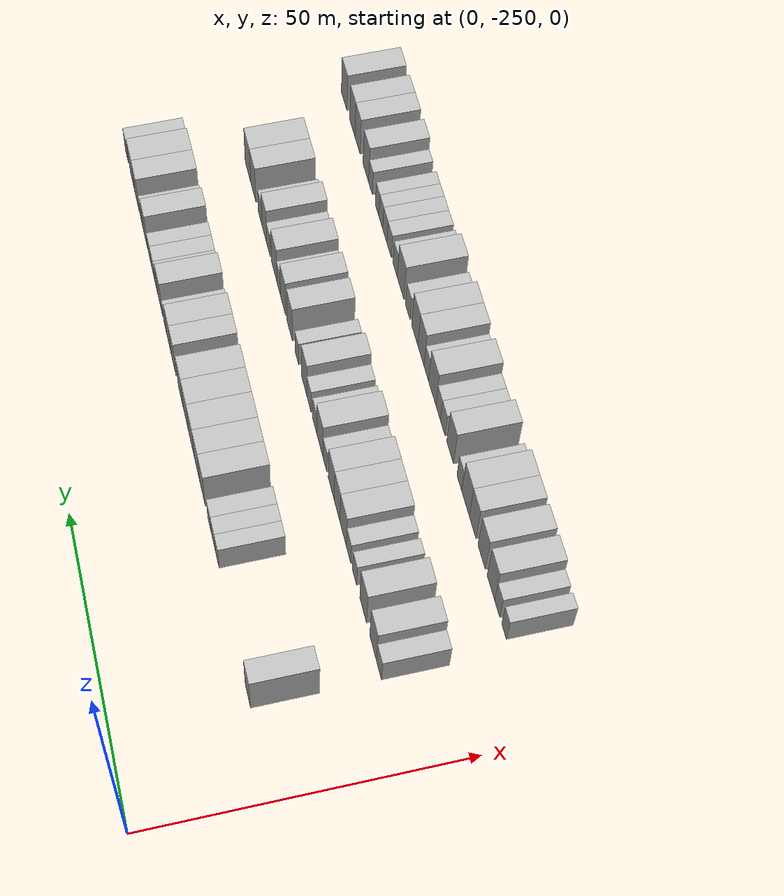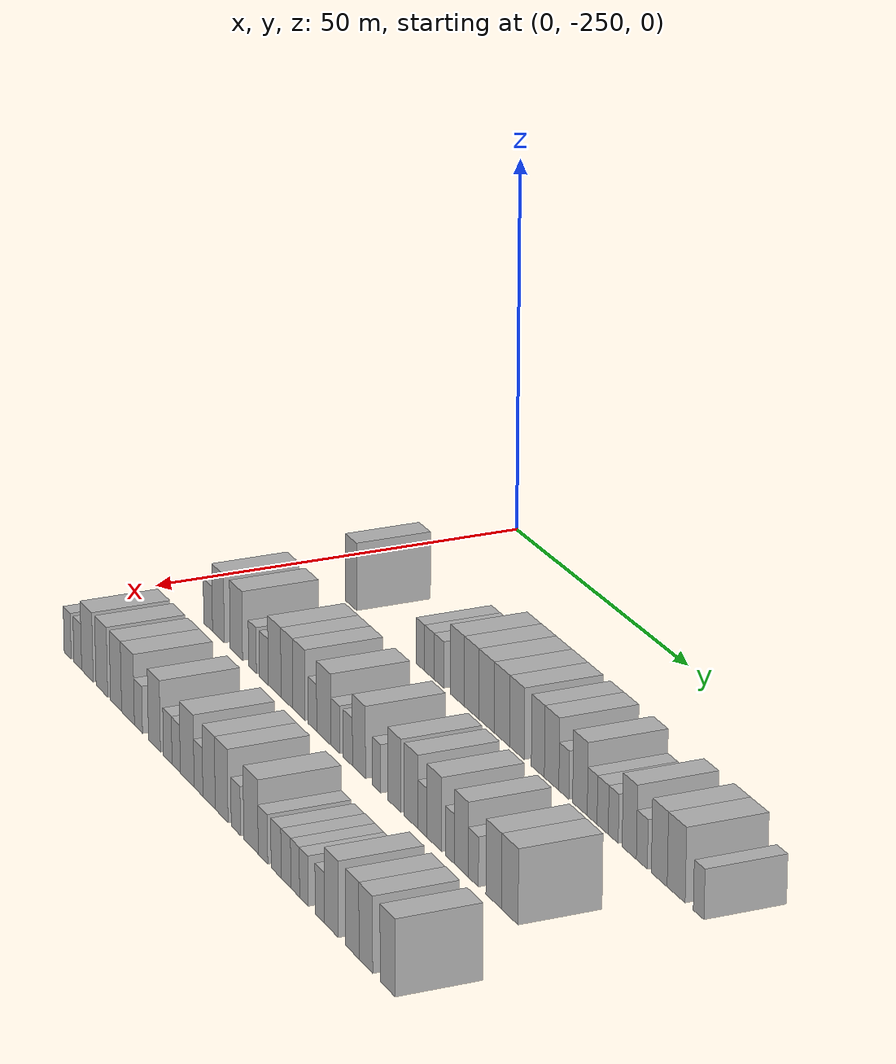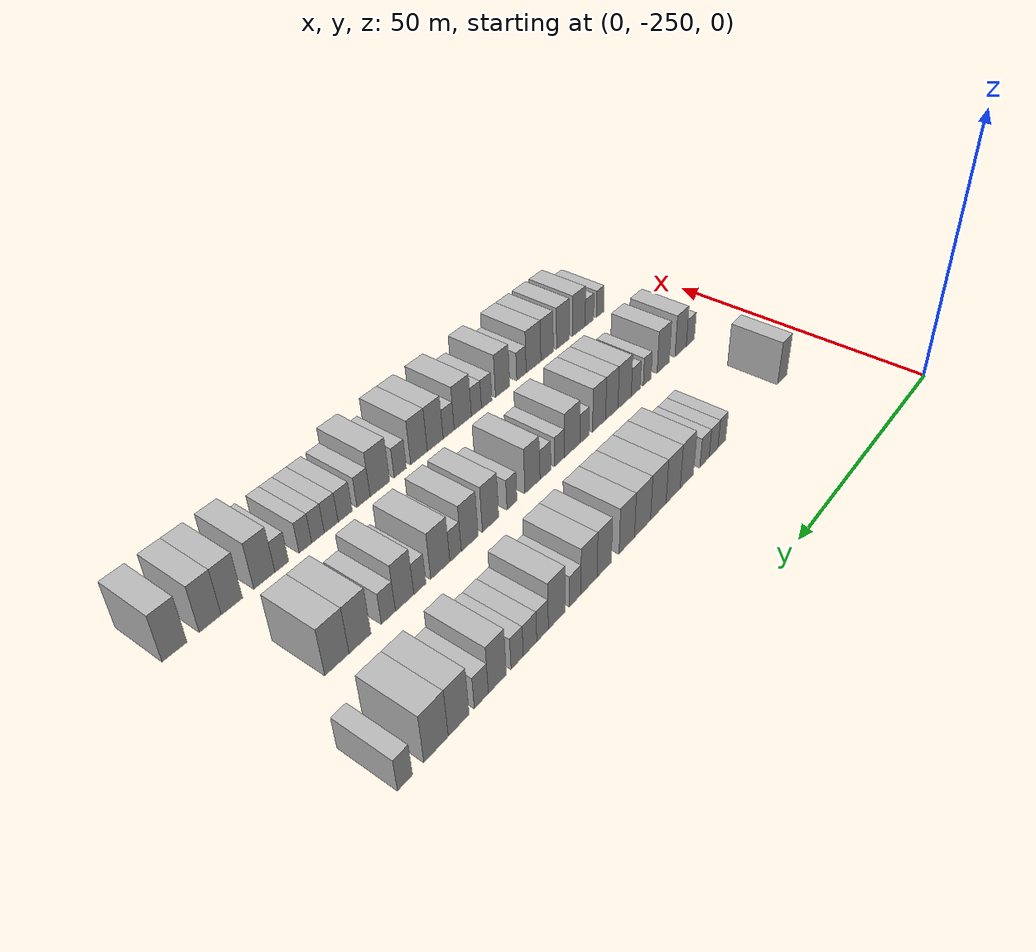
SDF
<sdf version="1.6">
 <world name="default">
  <model name="building_1">
   <static>1</static>
   <pose>25.0000 -234.1996 0 0.000000 0.000000 0.000000</pose>
   <link name="link">
    <pose>0 0 4.50 0 0 0</pose>
    <collision name="collision"><geometry><box><size>10.0000 3.6008 9.0000</size></box></geometry></collision>
    <visual name="visual">
     <cast_shadows>0</cast_shadows>
     <geometry><box><size>10.0000 3.6008 9.0000</size></box></geometry>
     <material>
      <script>
       <uri>model://HANNAS_wall/materials/scripts</uri>
       <uri>model://HANNAS_wall/materials/textures</uri>
       <name>vrc/HANNAS_wall</name>
      </script>
     </material>
    </visual>
   </link>
  </model>
  <model name="building_2">
   <static>1</static>
   <pose>25.0000 -212.4626 0 0.000000 0.000000 0.000000</pose>
   <link name="link">
    <pose>0 0 3.00 0 0 0</pose>
    <collision name="collision"><geometry><box><size>10.0000 2.6244 6.0000</size></box></geometry></collision>
    <visual name="visual">
     <cast_shadows>0</cast_shadows>
     <geometry><box><size>10.0000 2.6244 6.0000</size></box></geometry>
     <material>
      <script>
       <uri>model://HANNAS_wall/materials/scripts</uri>
       <uri>model://HANNAS_wall/materials/textures</uri>
       <name>vrc/HANNAS_wall</name>
      </script>
     </material>
    </visual>
   </link>
  </model>
  <model name="building_3">
   <static>1</static>
   <pose>25.0000 -209.7296 0 0.000000 0.000000 0.000000</pose>
   <link name="link">
    <pose>0 0 3.00 0 0 0</pose>
    <collision name="collision"><geometry><box><size>10.0000 2.8417 6.0000</size></box></geometry></collision>
    <visual name="visual">
     <cast_shadows>0</cast_shadows>
     <geometry><box><size>10.0000 2.8417 6.0000</size></box></geometry>
     <material>
      <script>
       <uri>model://HANNAS_wall/materials/scripts</uri>
       <uri>model://HANNAS_wall/materials/textures</uri>
       <name>vrc/HANNAS_wall</name>
      </script>
     </material>
    </visual>
   </link>
  </model>
  <model name="building_4">
   <static>1</static>
   <pose>25.0000 -206.8350 0 0.000000 0.000000 0.000000</pose>
   <link name="link">
    <pose>0 0 3.00 0 0 0</pose>
    <collision name="collision"><geometry><box><size>10.0000 2.9476 6.0000</size></box></geometry></collision>
    <visual name="visual">
     <cast_shadows>0</cast_shadows>
     <geometry><box><size>10.0000 2.9476 6.0000</size></box></geometry>
     <material>
      <script>
       <uri>model://HANNAS_wall/materials/scripts</uri>
       <uri>model://HANNAS_wall/materials/textures</uri>
       <name>vrc/HANNAS_wall</name>
      </script>
     </material>
    </visual>
   </link>
  </model>
  <model name="building_5">
   <static>1</static>
   <pose>25.0000 -201.3262 0 0.000000 0.000000 0.000000</pose>
   <link name="link">
    <pose>0 0 4.50 0 0 0</pose>
    <collision name="collision"><geometry><box><size>10.0000 4.0698 9.0000</size></box></geometry></collision>
    <visual name="visual">
     <cast_shadows>0</cast_shadows>
     <geometry><box><size>10.0000 4.0698 9.0000</size></box></geometry>
     <material>
      <script>
       <uri>model://HANNAS_wall/materials/scripts</uri>
       <uri>model://HANNAS_wall/materials/textures</uri>
       <name>vrc/HANNAS_wall</name>
      </script>
     </material>
    </visual>
   </link>
  </model>
  <model name="building_6">
   <static>1</static>
   <pose>25.0000 -197.2002 0 0.000000 0.000000 0.000000</pose>
   <link name="link">
    <pose>0 0 4.50 0 0 0</pose>
    <collision name="collision"><geometry><box><size>10.0000 4.1822 9.0000</size></box></geometry></collision>
    <visual name="visual">
     <cast_shadows>0</cast_shadows>
     <geometry><box><size>10.0000 4.1822 9.0000</size></box></geometry>
     <material>
      <script>
       <uri>model://HANNAS_wall/materials/scripts</uri>
       <uri>model://HANNAS_wall/materials/textures</uri>
       <name>vrc/HANNAS_wall</name>
      </script>
     </material>
    </visual>
   </link>
  </model>
  <model name="building_7">
   <static>1</static>
   <pose>25.0000 -192.8807 0 0.000000 0.000000 0.000000</pose>
   <link name="link">
    <pose>0 0 4.50 0 0 0</pose>
    <collision name="collision"><geometry><box><size>10.0000 4.4569 9.0000</size></box></geometry></collision>
    <visual name="visual">
     <cast_shadows>0</cast_shadows>
     <geometry><box><size>10.0000 4.4569 9.0000</size></box></geometry>
     <material>
      <script>
       <uri>model://HANNAS_wall/materials/scripts</uri>
       <uri>model://HANNAS_wall/materials/textures</uri>
       <name>vrc/HANNAS_wall</name>
      </script>
     </material>
    </visual>
   </link>
  </model>
  <model name="building_8">
   <static>1</static>
   <pose>25.0000 -188.4448 0 0.000000 0.000000 0.000000</pose>
   <link name="link">
    <pose>0 0 4.50 0 0 0</pose>
    <collision name="collision"><geometry><box><size>10.0000 4.4149 9.0000</size></box></geometry></collision>
    <visual name="visual">
     <cast_shadows>0</cast_shadows>
     <geometry><box><size>10.0000 4.4149 9.0000</size></box></geometry>
     <material>
      <script>
       <uri>model://HANNAS_wall/materials/scripts</uri>
       <uri>model://HANNAS_wall/materials/textures</uri>
       <name>vrc/HANNAS_wall</name>
      </script>
     </material>
    </visual>
   </link>
  </model>
  <model name="building_9">
   <static>1</static>
   <pose>25.0000 -184.1795 0 0.000000 0.000000 0.000000</pose>
   <link name="link">
    <pose>0 0 4.50 0 0 0</pose>
    <collision name="collision"><geometry><box><size>10.0000 4.1157 9.0000</size></box></geometry></collision>
    <visual name="visual">
     <cast_shadows>0</cast_shadows>
     <geometry><box><size>10.0000 4.1157 9.0000</size></box></geometry>
     <material>
      <script>
       <uri>model://HANNAS_wall/materials/scripts</uri>
       <uri>model://HANNAS_wall/materials/textures</uri>
       <name>vrc/HANNAS_wall</name>
      </script>
     </material>
    </visual>
   </link>
  </model>
  <model name="building_10">
   <static>1</static>
   <pose>25.0000 -178.3188 0 0.000000 0.000000 0.000000</pose>
   <link name="link">
    <pose>0 0 4.50 0 0 0</pose>
    <collision name="collision"><geometry><box><size>10.0000 3.6058 9.0000</size></box></geometry></collision>
    <visual name="visual">
     <cast_shadows>0</cast_shadows>
     <geometry><box><size>10.0000 3.6058 9.0000</size></box></geometry>
     <material>
      <script>
       <uri>model://HANNAS_wall/materials/scripts</uri>
       <uri>model://HANNAS_wall/materials/textures</uri>
       <name>vrc/HANNAS_wall</name>
      </script>
     </material>
    </visual>
   </link>
  </model>
  <model name="building_11">
   <static>1</static>
   <pose>25.0000 -174.5327 0 0.000000 0.000000 0.000000</pose>
   <link name="link">
    <pose>0 0 4.50 0 0 0</pose>
    <collision name="collision"><geometry><box><size>10.0000 3.9665 9.0000</size></box></geometry></collision>
    <visual name="visual">
     <cast_shadows>0</cast_shadows>
     <geometry><box><size>10.0000 3.9665 9.0000</size></box></geometry>
     <material>
      <script>
       <uri>model://HANNAS_wall/materials/scripts</uri>
       <uri>model://HANNAS_wall/materials/textures</uri>
       <name>vrc/HANNAS_wall</name>
      </script>
     </material>
    </visual>
   </link>
  </model>
  <model name="building_12">
   <static>1</static>
   <pose>25.0000 -171.1849 0 0.000000 0.000000 0.000000</pose>
   <link name="link">
    <pose>0 0 3.00 0 0 0</pose>
    <collision name="collision"><geometry><box><size>10.0000 2.7291 6.0000</size></box></geometry></collision>
    <visual name="visual">
     <cast_shadows>0</cast_shadows>
     <geometry><box><size>10.0000 2.7291 6.0000</size></box></geometry>
     <material>
      <script>
       <uri>model://HANNAS_wall/materials/scripts</uri>
       <uri>model://HANNAS_wall/materials/textures</uri>
       <name>vrc/HANNAS_wall</name>
      </script>
     </material>
    </visual>
   </link>
  </model>
  <model name="building_13">
   <static>1</static>
   <pose>25.0000 -166.8617 0 0.000000 0.000000 0.000000</pose>
   <link name="link">
    <pose>0 0 4.50 0 0 0</pose>
    <collision name="collision"><geometry><box><size>10.0000 3.9173 9.0000</size></box></geometry></collision>
    <visual name="visual">
     <cast_shadows>0</cast_shadows>
     <geometry><box><size>10.0000 3.9173 9.0000</size></box></geometry>
     <material>
      <script>
       <uri>model://HANNAS_wall/materials/scripts</uri>
       <uri>model://HANNAS_wall/materials/textures</uri>
       <name>vrc/HANNAS_wall</name>
      </script>
     </material>
    </visual>
   </link>
  </model>
  <model name="building_14">
   <static>1</static>
   <pose>25.0000 -163.6050 0 0.000000 0.000000 0.000000</pose>
   <link name="link">
    <pose>0 0 3.00 0 0 0</pose>
    <collision name="collision"><geometry><box><size>10.0000 2.5963 6.0000</size></box></geometry></collision>
    <visual name="visual">
     <cast_shadows>0</cast_shadows>
     <geometry><box><size>10.0000 2.5963 6.0000</size></box></geometry>
     <material>
      <script>
       <uri>model://HANNAS_wall/materials/scripts</uri>
       <uri>model://HANNAS_wall/materials/textures</uri>
       <name>vrc/HANNAS_wall</name>
      </script>
     </material>
    </visual>
   </link>
  </model>
  <model name="building_15">
   <static>1</static>
   <pose>25.0000 -160.8291 0 0.000000 0.000000 0.000000</pose>
   <link name="link">
    <pose>0 0 3.00 0 0 0</pose>
    <collision name="collision"><geometry><box><size>10.0000 2.9556 6.0000</size></box></geometry></collision>
    <visual name="visual">
     <cast_shadows>0</cast_shadows>
     <geometry><box><size>10.0000 2.9556 6.0000</size></box></geometry>
     <material>
      <script>
       <uri>model://HANNAS_wall/materials/scripts</uri>
       <uri>model://HANNAS_wall/materials/textures</uri>
       <name>vrc/HANNAS_wall</name>
      </script>
     </material>
    </visual>
   </link>
  </model>
  <model name="building_16">
   <static>1</static>
   <pose>25.0000 -158.0564 0 0.000000 0.000000 0.000000</pose>
   <link name="link">
    <pose>0 0 3.00 0 0 0</pose>
    <collision name="collision"><geometry><box><size>10.0000 2.5897 6.0000</size></box></geometry></collision>
    <visual name="visual">
     <cast_shadows>0</cast_shadows>
     <geometry><box><size>10.0000 2.5897 6.0000</size></box></geometry>
     <material>
      <script>
       <uri>model://HANNAS_wall/materials/scripts</uri>
       <uri>model://HANNAS_wall/materials/textures</uri>
       <name>vrc/HANNAS_wall</name>
      </script>
     </material>
    </visual>
   </link>
  </model>
  <model name="building_17">
   <static>1</static>
   <pose>25.0000 -153.9333 0 0.000000 0.000000 0.000000</pose>
   <link name="link">
    <pose>0 0 4.50 0 0 0</pose>
    <collision name="collision"><geometry><box><size>10.0000 3.6567 9.0000</size></box></geometry></collision>
    <visual name="visual">
     <cast_shadows>0</cast_shadows>
     <geometry><box><size>10.0000 3.6567 9.0000</size></box></geometry>
     <material>
      <script>
       <uri>model://HANNAS_wall/materials/scripts</uri>
       <uri>model://HANNAS_wall/materials/textures</uri>
       <name>vrc/HANNAS_wall</name>
      </script>
     </material>
    </visual>
   </link>
  </model>
  <model name="building_18">
   <static>1</static>
   <pose>25.0000 -150.7029 0 0.000000 0.000000 0.000000</pose>
   <link name="link">
    <pose>0 0 3.00 0 0 0</pose>
    <collision name="collision"><geometry><box><size>10.0000 2.8040 6.0000</size></box></geometry></collision>
    <visual name="visual">
     <cast_shadows>0</cast_shadows>
     <geometry><box><size>10.0000 2.8040 6.0000</size></box></geometry>
     <material>
      <script>
       <uri>model://HANNAS_wall/materials/scripts</uri>
       <uri>model://HANNAS_wall/materials/textures</uri>
       <name>vrc/HANNAS_wall</name>
      </script>
     </material>
    </visual>
   </link>
  </model>
  <model name="building_19">
   <static>1</static>
   <pose>25.0000 -146.3137 0 0.000000 0.000000 0.000000</pose>
   <link name="link">
    <pose>0 0 4.50 0 0 0</pose>
    <collision name="collision"><geometry><box><size>10.0000 3.9744 9.0000</size></box></geometry></collision>
    <visual name="visual">
     <cast_shadows>0</cast_shadows>
     <geometry><box><size>10.0000 3.9744 9.0000</size></box></geometry>
     <material>
      <script>
       <uri>model://HANNAS_wall/materials/scripts</uri>
       <uri>model://HANNAS_wall/materials/textures</uri>
       <name>vrc/HANNAS_wall</name>
      </script>
     </material>
    </visual>
   </link>
  </model>
  <model name="building_20">
   <static>1</static>
   <pose>25.0000 -142.0945 0 0.000000 0.000000 0.000000</pose>
   <link name="link">
    <pose>0 0 4.50 0 0 0</pose>
    <collision name="collision"><geometry><box><size>10.0000 4.4641 9.0000</size></box></geometry></collision>
    <visual name="visual">
     <cast_shadows>0</cast_shadows>
     <geometry><box><size>10.0000 4.4641 9.0000</size></box></geometry>
     <material>
      <script>
       <uri>model://HANNAS_wall/materials/scripts</uri>
       <uri>model://HANNAS_wall/materials/textures</uri>
       <name>vrc/HANNAS_wall</name>
      </script>
     </material>
    </visual>
   </link>
  </model>
  <model name="building_21">
   <static>1</static>
   <pose>25.0000 -136.5573 0 0.000000 0.000000 0.000000</pose>
   <link name="link">
    <pose>0 0 3.00 0 0 0</pose>
    <collision name="collision"><geometry><box><size>10.0000 2.6102 6.0000</size></box></geometry></collision>
    <visual name="visual">
     <cast_shadows>0</cast_shadows>
     <geometry><box><size>10.0000 2.6102 6.0000</size></box></geometry>
     <material>
      <script>
       <uri>model://HANNAS_wall/materials/scripts</uri>
       <uri>model://HANNAS_wall/materials/textures</uri>
       <name>vrc/HANNAS_wall</name>
      </script>
     </material>
    </visual>
   </link>
  </model>
  <model name="building_119">
   <static>1</static>
   <pose>44.0000 -234.5075 0 0.000000 0.000000 0.000000</pose>
   <link name="link">
    <pose>0 0 3.00 0 0 0</pose>
    <collision name="collision"><geometry><box><size>10.0000 2.9849 6.0000</size></box></geometry></collision>
    <visual name="visual">
     <cast_shadows>0</cast_shadows>
     <geometry><box><size>10.0000 2.9849 6.0000</size></box></geometry>
     <material>
      <script>
       <uri>model://HANNAS_wall/materials/scripts</uri>
       <uri>model://HANNAS_wall/materials/textures</uri>
       <name>vrc/HANNAS_wall</name>
      </script>
     </material>
    </visual>
   </link>
  </model>
  <model name="building_120">
   <static>1</static>
   <pose>44.0000 -231.0222 0 0.000000 0.000000 0.000000</pose>
   <link name="link">
    <pose>0 0 4.50 0 0 0</pose>
    <collision name="collision"><geometry><box><size>10.0000 3.9858 9.0000</size></box></geometry></collision>
    <visual name="visual">
     <cast_shadows>0</cast_shadows>
     <geometry><box><size>10.0000 3.9858 9.0000</size></box></geometry>
     <material>
      <script>
       <uri>model://HANNAS_wall/materials/scripts</uri>
       <uri>model://HANNAS_wall/materials/textures</uri>
       <name>vrc/HANNAS_wall</name>
      </script>
     </material>
    </visual>
   </link>
  </model>
  <model name="building_121">
   <static>1</static>
   <pose>44.0000 -224.9739 0 0.000000 0.000000 0.000000</pose>
   <link name="link">
    <pose>0 0 4.50 0 0 0</pose>
    <collision name="collision"><geometry><box><size>10.0000 4.1107 9.0000</size></box></geometry></collision>
    <visual name="visual">
     <cast_shadows>0</cast_shadows>
     <geometry><box><size>10.0000 4.1107 9.0000</size></box></geometry>
     <material>
      <script>
       <uri>model://HANNAS_wall/materials/scripts</uri>
       <uri>model://HANNAS_wall/materials/textures</uri>
       <name>vrc/HANNAS_wall</name>
      </script>
     </material>
    </visual>
   </link>
  </model>
  <model name="building_122">
   <static>1</static>
   <pose>44.0000 -219.6382 0 0.000000 0.000000 0.000000</pose>
   <link name="link">
    <pose>0 0 3.00 0 0 0</pose>
    <collision name="collision"><geometry><box><size>10.0000 2.5608 6.0000</size></box></geometry></collision>
    <visual name="visual">
     <cast_shadows>0</cast_shadows>
     <geometry><box><size>10.0000 2.5608 6.0000</size></box></geometry>
     <material>
      <script>
       <uri>model://HANNAS_wall/materials/scripts</uri>
       <uri>model://HANNAS_wall/materials/textures</uri>
       <name>vrc/HANNAS_wall</name>
      </script>
     </material>
    </visual>
   </link>
  </model>
  <model name="building_123">
   <static>1</static>
   <pose>44.0000 -215.9315 0 0.000000 0.000000 0.000000</pose>
   <link name="link">
    <pose>0 0 3.00 0 0 0</pose>
    <collision name="collision"><geometry><box><size>10.0000 2.8527 6.0000</size></box></geometry></collision>
    <visual name="visual">
     <cast_shadows>0</cast_shadows>
     <geometry><box><size>10.0000 2.8527 6.0000</size></box></geometry>
     <material>
      <script>
       <uri>model://HANNAS_wall/materials/scripts</uri>
       <uri>model://HANNAS_wall/materials/textures</uri>
       <name>vrc/HANNAS_wall</name>
      </script>
     </material>
    </visual>
   </link>
  </model>
  <model name="building_124">
   <static>1</static>
   <pose>44.0000 -212.4342 0 0.000000 0.000000 0.000000</pose>
   <link name="link">
    <pose>0 0 4.50 0 0 0</pose>
    <collision name="collision"><geometry><box><size>10.0000 4.1420 9.0000</size></box></geometry></collision>
    <visual name="visual">
     <cast_shadows>0</cast_shadows>
     <geometry><box><size>10.0000 4.1420 9.0000</size></box></geometry>
     <material>
      <script>
       <uri>model://HANNAS_wall/materials/scripts</uri>
       <uri>model://HANNAS_wall/materials/textures</uri>
       <name>vrc/HANNAS_wall</name>
      </script>
     </material>
    </visual>
   </link>
  </model>
  <model name="building_125">
   <static>1</static>
   <pose>44.0000 -208.4997 0 0.000000 0.000000 0.000000</pose>
   <link name="link">
    <pose>0 0 4.50 0 0 0</pose>
    <collision name="collision"><geometry><box><size>10.0000 3.7270 9.0000</size></box></geometry></collision>
    <visual name="visual">
     <cast_shadows>0</cast_shadows>
     <geometry><box><size>10.0000 3.7270 9.0000</size></box></geometry>
     <material>
      <script>
       <uri>model://HANNAS_wall/materials/scripts</uri>
       <uri>model://HANNAS_wall/materials/textures</uri>
       <name>vrc/HANNAS_wall</name>
      </script>
     </material>
    </visual>
   </link>
  </model>
  <model name="building_126">
   <static>1</static>
   <pose>44.0000 -204.7067 0 0.000000 0.000000 0.000000</pose>
   <link name="link">
    <pose>0 0 4.50 0 0 0</pose>
    <collision name="collision"><geometry><box><size>10.0000 3.8591 9.0000</size></box></geometry></collision>
    <visual name="visual">
     <cast_shadows>0</cast_shadows>
     <geometry><box><size>10.0000 3.8591 9.0000</size></box></geometry>
     <material>
      <script>
       <uri>model://HANNAS_wall/materials/scripts</uri>
       <uri>model://HANNAS_wall/materials/textures</uri>
       <name>vrc/HANNAS_wall</name>
      </script>
     </material>
    </visual>
   </link>
  </model>
  <model name="building_127">
   <static>1</static>
   <pose>44.0000 -200.4632 0 0.000000 0.000000 0.000000</pose>
   <link name="link">
    <pose>0 0 3.00 0 0 0</pose>
    <collision name="collision"><geometry><box><size>10.0000 2.6279 6.0000</size></box></geometry></collision>
    <visual name="visual">
     <cast_shadows>0</cast_shadows>
     <geometry><box><size>10.0000 2.6279 6.0000</size></box></geometry>
     <material>
      <script>
       <uri>model://HANNAS_wall/materials/scripts</uri>
       <uri>model://HANNAS_wall/materials/textures</uri>
       <name>vrc/HANNAS_wall</name>
      </script>
     </material>
    </visual>
   </link>
  </model>
  <model name="building_128">
   <static>1</static>
   <pose>44.0000 -196.9866 0 0.000000 0.000000 0.000000</pose>
   <link name="link">
    <pose>0 0 4.50 0 0 0</pose>
    <collision name="collision"><geometry><box><size>10.0000 4.3251 9.0000</size></box></geometry></collision>
    <visual name="visual">
     <cast_shadows>0</cast_shadows>
     <geometry><box><size>10.0000 4.3251 9.0000</size></box></geometry>
     <material>
      <script>
       <uri>model://HANNAS_wall/materials/scripts</uri>
       <uri>model://HANNAS_wall/materials/textures</uri>
       <name>vrc/HANNAS_wall</name>
      </script>
     </material>
    </visual>
   </link>
  </model>
  <model name="building_129">
   <static>1</static>
   <pose>44.0000 -193.4816 0 0.000000 0.000000 0.000000</pose>
   <link name="link">
    <pose>0 0 3.00 0 0 0</pose>
    <collision name="collision"><geometry><box><size>10.0000 2.6850 6.0000</size></box></geometry></collision>
    <visual name="visual">
     <cast_shadows>0</cast_shadows>
     <geometry><box><size>10.0000 2.6850 6.0000</size></box></geometry>
     <material>
      <script>
       <uri>model://HANNAS_wall/materials/scripts</uri>
       <uri>model://HANNAS_wall/materials/textures</uri>
       <name>vrc/HANNAS_wall</name>
      </script>
     </material>
    </visual>
   </link>
  </model>
  <model name="building_130">
   <static>1</static>
   <pose>44.0000 -189.6998 0 0.000000 0.000000 0.000000</pose>
   <link name="link">
    <pose>0 0 3.00 0 0 0</pose>
    <collision name="collision"><geometry><box><size>10.0000 2.8786 6.0000</size></box></geometry></collision>
    <visual name="visual">
     <cast_shadows>0</cast_shadows>
     <geometry><box><size>10.0000 2.8786 6.0000</size></box></geometry>
     <material>
      <script>
       <uri>model://HANNAS_wall/materials/scripts</uri>
       <uri>model://HANNAS_wall/materials/textures</uri>
       <name>vrc/HANNAS_wall</name>
      </script>
     </material>
    </visual>
   </link>
  </model>
  <model name="building_131">
   <static>1</static>
   <pose>44.0000 -186.3219 0 0.000000 0.000000 0.000000</pose>
   <link name="link">
    <pose>0 0 4.50 0 0 0</pose>
    <collision name="collision"><geometry><box><size>10.0000 3.8773 9.0000</size></box></geometry></collision>
    <visual name="visual">
     <cast_shadows>0</cast_shadows>
     <geometry><box><size>10.0000 3.8773 9.0000</size></box></geometry>
     <material>
      <script>
       <uri>model://HANNAS_wall/materials/scripts</uri>
       <uri>model://HANNAS_wall/materials/textures</uri>
       <name>vrc/HANNAS_wall</name>
      </script>
     </material>
    </visual>
   </link>
  </model>
  <model name="building_132">
   <static>1</static>
   <pose>44.0000 -181.1494 0 0.000000 0.000000 0.000000</pose>
   <link name="link">
    <pose>0 0 3.00 0 0 0</pose>
    <collision name="collision"><geometry><box><size>10.0000 2.4678 6.0000</size></box></geometry></collision>
    <visual name="visual">
     <cast_shadows>0</cast_shadows>
     <geometry><box><size>10.0000 2.4678 6.0000</size></box></geometry>
     <material>
      <script>
       <uri>model://HANNAS_wall/materials/scripts</uri>
       <uri>model://HANNAS_wall/materials/textures</uri>
       <name>vrc/HANNAS_wall</name>
      </script>
     </material>
    </visual>
   </link>
  </model>
  <model name="building_133">
   <static>1</static>
   <pose>44.0000 -175.9787 0 0.000000 0.000000 0.000000</pose>
   <link name="link">
    <pose>0 0 4.50 0 0 0</pose>
    <collision name="collision"><geometry><box><size>10.0000 3.8735 9.0000</size></box></geometry></collision>
    <visual name="visual">
     <cast_shadows>0</cast_shadows>
     <geometry><box><size>10.0000 3.8735 9.0000</size></box></geometry>
     <material>
      <script>
       <uri>model://HANNAS_wall/materials/scripts</uri>
       <uri>model://HANNAS_wall/materials/textures</uri>
       <name>vrc/HANNAS_wall</name>
      </script>
     </material>
    </visual>
   </link>
  </model>
  <model name="building_134">
   <static>1</static>
   <pose>44.0000 -171.1171 0 0.000000 0.000000 0.000000</pose>
   <link name="link">
    <pose>0 0 4.50 0 0 0</pose>
    <collision name="collision"><geometry><box><size>10.0000 3.8497 9.0000</size></box></geometry></collision>
    <visual name="visual">
     <cast_shadows>0</cast_shadows>
     <geometry><box><size>10.0000 3.8497 9.0000</size></box></geometry>
     <material>
      <script>
       <uri>model://HANNAS_wall/materials/scripts</uri>
       <uri>model://HANNAS_wall/materials/textures</uri>
       <name>vrc/HANNAS_wall</name>
      </script>
     </material>
    </visual>
   </link>
  </model>
  <model name="building_135">
   <static>1</static>
   <pose>44.0000 -167.9198 0 0.000000 0.000000 0.000000</pose>
   <link name="link">
    <pose>0 0 3.00 0 0 0</pose>
    <collision name="collision"><geometry><box><size>10.0000 2.5449 6.0000</size></box></geometry></collision>
    <visual name="visual">
     <cast_shadows>0</cast_shadows>
     <geometry><box><size>10.0000 2.5449 6.0000</size></box></geometry>
     <material>
      <script>
       <uri>model://HANNAS_wall/materials/scripts</uri>
       <uri>model://HANNAS_wall/materials/textures</uri>
       <name>vrc/HANNAS_wall</name>
      </script>
     </material>
    </visual>
   </link>
  </model>
  <model name="building_136">
   <static>1</static>
   <pose>44.0000 -164.5777 0 0.000000 0.000000 0.000000</pose>
   <link name="link">
    <pose>0 0 4.50 0 0 0</pose>
    <collision name="collision"><geometry><box><size>10.0000 4.1393 9.0000</size></box></geometry></collision>
    <visual name="visual">
     <cast_shadows>0</cast_shadows>
     <geometry><box><size>10.0000 4.1393 9.0000</size></box></geometry>
     <material>
      <script>
       <uri>model://HANNAS_wall/materials/scripts</uri>
       <uri>model://HANNAS_wall/materials/textures</uri>
       <name>vrc/HANNAS_wall</name>
      </script>
     </material>
    </visual>
   </link>
  </model>
  <model name="building_137">
   <static>1</static>
   <pose>44.0000 -160.2426 0 0.000000 0.000000 0.000000</pose>
   <link name="link">
    <pose>0 0 3.00 0 0 0</pose>
    <collision name="collision"><geometry><box><size>10.0000 2.5309 6.0000</size></box></geometry></collision>
    <visual name="visual">
     <cast_shadows>0</cast_shadows>
     <geometry><box><size>10.0000 2.5309 6.0000</size></box></geometry>
     <material>
      <script>
       <uri>model://HANNAS_wall/materials/scripts</uri>
       <uri>model://HANNAS_wall/materials/textures</uri>
       <name>vrc/HANNAS_wall</name>
      </script>
     </material>
    </visual>
   </link>
  </model>
  <model name="building_138">
   <static>1</static>
   <pose>44.0000 -157.1145 0 0.000000 0.000000 0.000000</pose>
   <link name="link">
    <pose>0 0 4.50 0 0 0</pose>
    <collision name="collision"><geometry><box><size>10.0000 3.7253 9.0000</size></box></geometry></collision>
    <visual name="visual">
     <cast_shadows>0</cast_shadows>
     <geometry><box><size>10.0000 3.7253 9.0000</size></box></geometry>
     <material>
      <script>
       <uri>model://HANNAS_wall/materials/scripts</uri>
       <uri>model://HANNAS_wall/materials/textures</uri>
       <name>vrc/HANNAS_wall</name>
      </script>
     </material>
    </visual>
   </link>
  </model>
  <model name="building_139">
   <static>1</static>
   <pose>44.0000 -153.8590 0 0.000000 0.000000 0.000000</pose>
   <link name="link">
    <pose>0 0 3.00 0 0 0</pose>
    <collision name="collision"><geometry><box><size>10.0000 2.7857 6.0000</size></box></geometry></collision>
    <visual name="visual">
     <cast_shadows>0</cast_shadows>
     <geometry><box><size>10.0000 2.7857 6.0000</size></box></geometry>
     <material>
      <script>
       <uri>model://HANNAS_wall/materials/scripts</uri>
       <uri>model://HANNAS_wall/materials/textures</uri>
       <name>vrc/HANNAS_wall</name>
      </script>
     </material>
    </visual>
   </link>
  </model>
  <model name="building_140">
   <static>1</static>
   <pose>44.0000 -148.4086 0 0.000000 0.000000 0.000000</pose>
   <link name="link">
    <pose>0 0 4.50 0 0 0</pose>
    <collision name="collision"><geometry><box><size>10.0000 4.1149 9.0000</size></box></geometry></collision>
    <visual name="visual">
     <cast_shadows>0</cast_shadows>
     <geometry><box><size>10.0000 4.1149 9.0000</size></box></geometry>
     <material>
      <script>
       <uri>model://HANNAS_wall/materials/scripts</uri>
       <uri>model://HANNAS_wall/materials/textures</uri>
       <name>vrc/HANNAS_wall</name>
      </script>
     </material>
    </visual>
   </link>
  </model>
  <model name="building_141">
   <static>1</static>
   <pose>44.0000 -144.1544 0 0.000000 0.000000 0.000000</pose>
   <link name="link">
    <pose>0 0 4.50 0 0 0</pose>
    <collision name="collision"><geometry><box><size>10.0000 4.3935 9.0000</size></box></geometry></collision>
    <visual name="visual">
     <cast_shadows>0</cast_shadows>
     <geometry><box><size>10.0000 4.3935 9.0000</size></box></geometry>
     <material>
      <script>
       <uri>model://HANNAS_wall/materials/scripts</uri>
       <uri>model://HANNAS_wall/materials/textures</uri>
       <name>vrc/HANNAS_wall</name>
      </script>
     </material>
    </visual>
   </link>
  </model>
  <model name="building_232">
   <static>1</static>
   <pose>63.0000 -232.7472 0 0.000000 0.000000 0.000000</pose>
   <link name="link">
    <pose>0 0 3.00 0 0 0</pose>
    <collision name="collision"><geometry><box><size>10.0000 2.5056 6.0000</size></box></geometry></collision>
    <visual name="visual">
     <cast_shadows>0</cast_shadows>
     <geometry><box><size>10.0000 2.5056 6.0000</size></box></geometry>
     <material>
      <script>
       <uri>model://HANNAS_wall/materials/scripts</uri>
       <uri>model://HANNAS_wall/materials/textures</uri>
       <name>vrc/HANNAS_wall</name>
      </script>
     </material>
    </visual>
   </link>
  </model>
  <model name="building_233">
   <static>1</static>
   <pose>63.0000 -229.1139 0 0.000000 0.000000 0.000000</pose>
   <link name="link">
    <pose>0 0 3.00 0 0 0</pose>
    <collision name="collision"><geometry><box><size>10.0000 2.7609 6.0000</size></box></geometry></collision>
    <visual name="visual">
     <cast_shadows>0</cast_shadows>
     <geometry><box><size>10.0000 2.7609 6.0000</size></box></geometry>
     <material>
      <script>
       <uri>model://HANNAS_wall/materials/scripts</uri>
       <uri>model://HANNAS_wall/materials/textures</uri>
       <name>vrc/HANNAS_wall</name>
      </script>
     </material>
    </visual>
   </link>
  </model>
  <model name="building_234">
   <static>1</static>
   <pose>63.0000 -225.6871 0 0.000000 0.000000 0.000000</pose>
   <link name="link">
    <pose>0 0 4.50 0 0 0</pose>
    <collision name="collision"><geometry><box><size>10.0000 4.0929 9.0000</size></box></geometry></collision>
    <visual name="visual">
     <cast_shadows>0</cast_shadows>
     <geometry><box><size>10.0000 4.0929 9.0000</size></box></geometry>
     <material>
      <script>
       <uri>model://HANNAS_wall/materials/scripts</uri>
       <uri>model://HANNAS_wall/materials/textures</uri>
       <name>vrc/HANNAS_wall</name>
      </script>
     </material>
    </visual>
   </link>
  </model>
  <model name="building_235">
   <static>1</static>
   <pose>63.0000 -220.6066 0 0.000000 0.000000 0.000000</pose>
   <link name="link">
    <pose>0 0 4.50 0 0 0</pose>
    <collision name="collision"><geometry><box><size>10.0000 4.0680 9.0000</size></box></geometry></collision>
    <visual name="visual">
     <cast_shadows>0</cast_shadows>
     <geometry><box><size>10.0000 4.0680 9.0000</size></box></geometry>
     <material>
      <script>
       <uri>model://HANNAS_wall/materials/scripts</uri>
       <uri>model://HANNAS_wall/materials/textures</uri>
       <name>vrc/HANNAS_wall</name>
      </script>
     </material>
    </visual>
   </link>
  </model>
  <model name="building_236">
   <static>1</static>
   <pose>63.0000 -215.6680 0 0.000000 0.000000 0.000000</pose>
   <link name="link">
    <pose>0 0 4.50 0 0 0</pose>
    <collision name="collision"><geometry><box><size>10.0000 3.8091 9.0000</size></box></geometry></collision>
    <visual name="visual">
     <cast_shadows>0</cast_shadows>
     <geometry><box><size>10.0000 3.8091 9.0000</size></box></geometry>
     <material>
      <script>
       <uri>model://HANNAS_wall/materials/scripts</uri>
       <uri>model://HANNAS_wall/materials/textures</uri>
       <name>vrc/HANNAS_wall</name>
      </script>
     </material>
    </visual>
   </link>
  </model>
  <model name="building_237">
   <static>1</static>
   <pose>63.0000 -211.5917 0 0.000000 0.000000 0.000000</pose>
   <link name="link">
    <pose>0 0 4.50 0 0 0</pose>
    <collision name="collision"><geometry><box><size>10.0000 4.3435 9.0000</size></box></geometry></collision>
    <visual name="visual">
     <cast_shadows>0</cast_shadows>
     <geometry><box><size>10.0000 4.3435 9.0000</size></box></geometry>
     <material>
      <script>
       <uri>model://HANNAS_wall/materials/scripts</uri>
       <uri>model://HANNAS_wall/materials/textures</uri>
       <name>vrc/HANNAS_wall</name>
      </script>
     </material>
    </visual>
   </link>
  </model>
  <model name="building_238">
   <static>1</static>
   <pose>63.0000 -208.0568 0 0.000000 0.000000 0.000000</pose>
   <link name="link">
    <pose>0 0 3.00 0 0 0</pose>
    <collision name="collision"><geometry><box><size>10.0000 2.7264 6.0000</size></box></geometry></collision>
    <visual name="visual">
     <cast_shadows>0</cast_shadows>
     <geometry><box><size>10.0000 2.7264 6.0000</size></box></geometry>
     <material>
      <script>
       <uri>model://HANNAS_wall/materials/scripts</uri>
       <uri>model://HANNAS_wall/materials/textures</uri>
       <name>vrc/HANNAS_wall</name>
      </script>
     </material>
    </visual>
   </link>
  </model>
  <model name="building_239">
   <static>1</static>
   <pose>63.0000 -202.7054 0 0.000000 0.000000 0.000000</pose>
   <link name="link">
    <pose>0 0 4.50 0 0 0</pose>
    <collision name="collision"><geometry><box><size>10.0000 3.9764 9.0000</size></box></geometry></collision>
    <visual name="visual">
     <cast_shadows>0</cast_shadows>
     <geometry><box><size>10.0000 3.9764 9.0000</size></box></geometry>
     <material>
      <script>
       <uri>model://HANNAS_wall/materials/scripts</uri>
       <uri>model://HANNAS_wall/materials/textures</uri>
       <name>vrc/HANNAS_wall</name>
      </script>
     </material>
    </visual>
   </link>
  </model>
  <model name="building_240">
   <static>1</static>
   <pose>63.0000 -198.3169 0 0.000000 0.000000 0.000000</pose>
   <link name="link">
    <pose>0 0 3.00 0 0 0</pose>
    <collision name="collision"><geometry><box><size>10.0000 2.8008 6.0000</size></box></geometry></collision>
    <visual name="visual">
     <cast_shadows>0</cast_shadows>
     <geometry><box><size>10.0000 2.8008 6.0000</size></box></geometry>
     <material>
      <script>
       <uri>model://HANNAS_wall/materials/scripts</uri>
       <uri>model://HANNAS_wall/materials/textures</uri>
       <name>vrc/HANNAS_wall</name>
      </script>
     </material>
    </visual>
   </link>
  </model>
  <model name="building_241">
   <static>1</static>
   <pose>63.0000 -195.5702 0 0.000000 0.000000 0.000000</pose>
   <link name="link">
    <pose>0 0 3.00 0 0 0</pose>
    <collision name="collision"><geometry><box><size>10.0000 2.6926 6.0000</size></box></geometry></collision>
    <visual name="visual">
     <cast_shadows>0</cast_shadows>
     <geometry><box><size>10.0000 2.6926 6.0000</size></box></geometry>
     <material>
      <script>
       <uri>model://HANNAS_wall/materials/scripts</uri>
       <uri>model://HANNAS_wall/materials/textures</uri>
       <name>vrc/HANNAS_wall</name>
      </script>
     </material>
    </visual>
   </link>
  </model>
  <model name="building_242">
   <static>1</static>
   <pose>63.0000 -192.0030 0 0.000000 0.000000 0.000000</pose>
   <link name="link">
    <pose>0 0 4.50 0 0 0</pose>
    <collision name="collision"><geometry><box><size>10.0000 4.4417 9.0000</size></box></geometry></collision>
    <visual name="visual">
     <cast_shadows>0</cast_shadows>
     <geometry><box><size>10.0000 4.4417 9.0000</size></box></geometry>
     <material>
      <script>
       <uri>model://HANNAS_wall/materials/scripts</uri>
       <uri>model://HANNAS_wall/materials/textures</uri>
       <name>vrc/HANNAS_wall</name>
      </script>
     </material>
    </visual>
   </link>
  </model>
  <model name="building_243">
   <static>1</static>
   <pose>63.0000 -188.3923 0 0.000000 0.000000 0.000000</pose>
   <link name="link">
    <pose>0 0 3.00 0 0 0</pose>
    <collision name="collision"><geometry><box><size>10.0000 2.7797 6.0000</size></box></geometry></collision>
    <visual name="visual">
     <cast_shadows>0</cast_shadows>
     <geometry><box><size>10.0000 2.7797 6.0000</size></box></geometry>
     <material>
      <script>
       <uri>model://HANNAS_wall/materials/scripts</uri>
       <uri>model://HANNAS_wall/materials/textures</uri>
       <name>vrc/HANNAS_wall</name>
      </script>
     </material>
    </visual>
   </link>
  </model>
  <model name="building_244">
   <static>1</static>
   <pose>63.0000 -185.0519 0 0.000000 0.000000 0.000000</pose>
   <link name="link">
    <pose>0 0 4.50 0 0 0</pose>
    <collision name="collision"><geometry><box><size>10.0000 3.9012 9.0000</size></box></geometry></collision>
    <visual name="visual">
     <cast_shadows>0</cast_shadows>
     <geometry><box><size>10.0000 3.9012 9.0000</size></box></geometry>
     <material>
      <script>
       <uri>model://HANNAS_wall/materials/scripts</uri>
       <uri>model://HANNAS_wall/materials/textures</uri>
       <name>vrc/HANNAS_wall</name>
      </script>
     </material>
    </visual>
   </link>
  </model>
  <model name="building_245">
   <static>1</static>
   <pose>63.0000 -181.1178 0 0.000000 0.000000 0.000000</pose>
   <link name="link">
    <pose>0 0 4.50 0 0 0</pose>
    <collision name="collision"><geometry><box><size>10.0000 3.9668 9.0000</size></box></geometry></collision>
    <visual name="visual">
     <cast_shadows>0</cast_shadows>
     <geometry><box><size>10.0000 3.9668 9.0000</size></box></geometry>
     <material>
      <script>
       <uri>model://HANNAS_wall/materials/scripts</uri>
       <uri>model://HANNAS_wall/materials/textures</uri>
       <name>vrc/HANNAS_wall</name>
      </script>
     </material>
    </visual>
   </link>
  </model>
  <model name="building_246">
   <static>1</static>
   <pose>63.0000 -176.7145 0 0.000000 0.000000 0.000000</pose>
   <link name="link">
    <pose>0 0 3.00 0 0 0</pose>
    <collision name="collision"><geometry><box><size>10.0000 2.8398 6.0000</size></box></geometry></collision>
    <visual name="visual">
     <cast_shadows>0</cast_shadows>
     <geometry><box><size>10.0000 2.8398 6.0000</size></box></geometry>
     <material>
      <script>
       <uri>model://HANNAS_wall/materials/scripts</uri>
       <uri>model://HANNAS_wall/materials/textures</uri>
       <name>vrc/HANNAS_wall</name>
      </script>
     </material>
    </visual>
   </link>
  </model>
  <model name="building_247">
   <static>1</static>
   <pose>63.0000 -172.1051 0 0.000000 0.000000 0.000000</pose>
   <link name="link">
    <pose>0 0 4.50 0 0 0</pose>
    <collision name="collision"><geometry><box><size>10.0000 4.3791 9.0000</size></box></geometry></collision>
    <visual name="visual">
     <cast_shadows>0</cast_shadows>
     <geometry><box><size>10.0000 4.3791 9.0000</size></box></geometry>
     <material>
      <script>
       <uri>model://HANNAS_wall/materials/scripts</uri>
       <uri>model://HANNAS_wall/materials/textures</uri>
       <name>vrc/HANNAS_wall</name>
      </script>
     </material>
    </visual>
   </link>
  </model>
  <model name="building_248">
   <static>1</static>
   <pose>63.0000 -168.4843 0 0.000000 0.000000 0.000000</pose>
   <link name="link">
    <pose>0 0 3.00 0 0 0</pose>
    <collision name="collision"><geometry><box><size>10.0000 2.8625 6.0000</size></box></geometry></collision>
    <visual name="visual">
     <cast_shadows>0</cast_shadows>
     <geometry><box><size>10.0000 2.8625 6.0000</size></box></geometry>
     <material>
      <script>
       <uri>model://HANNAS_wall/materials/scripts</uri>
       <uri>model://HANNAS_wall/materials/textures</uri>
       <name>vrc/HANNAS_wall</name>
      </script>
     </material>
    </visual>
   </link>
  </model>
  <model name="building_249">
   <static>1</static>
   <pose>63.0000 -164.5714 0 0.000000 0.000000 0.000000</pose>
   <link name="link">
    <pose>0 0 3.00 0 0 0</pose>
    <collision name="collision"><geometry><box><size>10.0000 2.9632 6.0000</size></box></geometry></collision>
    <visual name="visual">
     <cast_shadows>0</cast_shadows>
     <geometry><box><size>10.0000 2.9632 6.0000</size></box></geometry>
     <material>
      <script>
       <uri>model://HANNAS_wall/materials/scripts</uri>
       <uri>model://HANNAS_wall/materials/textures</uri>
       <name>vrc/HANNAS_wall</name>
      </script>
     </material>
    </visual>
   </link>
  </model>
  <model name="building_250">
   <static>1</static>
   <pose>63.0000 -161.6681 0 0.000000 0.000000 0.000000</pose>
   <link name="link">
    <pose>0 0 3.00 0 0 0</pose>
    <collision name="collision"><geometry><box><size>10.0000 2.8433 6.0000</size></box></geometry></collision>
    <visual name="visual">
     <cast_shadows>0</cast_shadows>
     <geometry><box><size>10.0000 2.8433 6.0000</size></box></geometry>
     <material>
      <script>
       <uri>model://HANNAS_wall/materials/scripts</uri>
       <uri>model://HANNAS_wall/materials/textures</uri>
       <name>vrc/HANNAS_wall</name>
      </script>
     </material>
    </visual>
   </link>
  </model>
  <model name="building_251">
   <static>1</static>
   <pose>63.0000 -158.9732 0 0.000000 0.000000 0.000000</pose>
   <link name="link">
    <pose>0 0 3.00 0 0 0</pose>
    <collision name="collision"><geometry><box><size>10.0000 2.5465 6.0000</size></box></geometry></collision>
    <visual name="visual">
     <cast_shadows>0</cast_shadows>
     <geometry><box><size>10.0000 2.5465 6.0000</size></box></geometry>
     <material>
      <script>
       <uri>model://HANNAS_wall/materials/scripts</uri>
       <uri>model://HANNAS_wall/materials/textures</uri>
       <name>vrc/HANNAS_wall</name>
      </script>
     </material>
    </visual>
   </link>
  </model>
  <model name="building_252">
   <static>1</static>
   <pose>63.0000 -156.4547 0 0.000000 0.000000 0.000000</pose>
   <link name="link">
    <pose>0 0 3.00 0 0 0</pose>
    <collision name="collision"><geometry><box><size>10.0000 2.4904 6.0000</size></box></geometry></collision>
    <visual name="visual">
     <cast_shadows>0</cast_shadows>
     <geometry><box><size>10.0000 2.4904 6.0000</size></box></geometry>
     <material>
      <script>
       <uri>model://HANNAS_wall/materials/scripts</uri>
       <uri>model://HANNAS_wall/materials/textures</uri>
       <name>vrc/HANNAS_wall</name>
      </script>
     </material>
    </visual>
   </link>
  </model>
  <model name="building_253">
   <static>1</static>
   <pose>63.0000 -151.9043 0 0.000000 0.000000 0.000000</pose>
   <link name="link">
    <pose>0 0 3.00 0 0 0</pose>
    <collision name="collision"><geometry><box><size>10.0000 2.6103 6.0000</size></box></geometry></collision>
    <visual name="visual">
     <cast_shadows>0</cast_shadows>
     <geometry><box><size>10.0000 2.6103 6.0000</size></box></geometry>
     <material>
      <script>
       <uri>model://HANNAS_wall/materials/scripts</uri>
       <uri>model://HANNAS_wall/materials/textures</uri>
       <name>vrc/HANNAS_wall</name>
      </script>
     </material>
    </visual>
   </link>
  </model>
  <model name="building_254">
   <static>1</static>
   <pose>63.0000 -148.6392 0 0.000000 0.000000 0.000000</pose>
   <link name="link">
    <pose>0 0 4.50 0 0 0</pose>
    <collision name="collision"><geometry><box><size>10.0000 3.9200 9.0000</size></box></geometry></collision>
    <visual name="visual">
     <cast_shadows>0</cast_shadows>
     <geometry><box><size>10.0000 3.9200 9.0000</size></box></geometry>
     <material>
      <script>
       <uri>model://HANNAS_wall/materials/scripts</uri>
       <uri>model://HANNAS_wall/materials/textures</uri>
       <name>vrc/HANNAS_wall</name>
      </script>
     </material>
    </visual>
   </link>
  </model>
  <model name="building_255">
   <static>1</static>
   <pose>63.0000 -142.8029 0 0.000000 0.000000 0.000000</pose>
   <link name="link">
    <pose>0 0 4.50 0 0 0</pose>
    <collision name="collision"><geometry><box><size>10.0000 3.7526 9.0000</size></box></geometry></collision>
    <visual name="visual">
     <cast_shadows>0</cast_shadows>
     <geometry><box><size>10.0000 3.7526 9.0000</size></box></geometry>
     <material>
      <script>
       <uri>model://HANNAS_wall/materials/scripts</uri>
       <uri>model://HANNAS_wall/materials/textures</uri>
       <name>vrc/HANNAS_wall</name>
      </script>
     </material>
    </visual>
   </link>
  </model>
  <model name="building_256">
   <static>1</static>
   <pose>63.0000 -139.0562 0 0.000000 0.000000 0.000000</pose>
   <link name="link">
    <pose>0 0 4.50 0 0 0</pose>
    <collision name="collision"><geometry><box><size>10.0000 3.7408 9.0000</size></box></geometry></collision>
    <visual name="visual">
     <cast_shadows>0</cast_shadows>
     <geometry><box><size>10.0000 3.7408 9.0000</size></box></geometry>
     <material>
      <script>
       <uri>model://HANNAS_wall/materials/scripts</uri>
       <uri>model://HANNAS_wall/materials/textures</uri>
       <name>vrc/HANNAS_wall</name>
      </script>
     </material>
    </visual>
   </link>
  </model>
  <model name="building_257">
   <static>1</static>
   <pose>63.0000 -133.1626 0 0.000000 0.000000 0.000000</pose>
   <link name="link">
    <pose>0 0 4.50 0 0 0</pose>
    <collision name="collision"><geometry><box><size>10.0000 4.0462 9.0000</size></box></geometry></collision>
    <visual name="visual">
     <cast_shadows>0</cast_shadows>
     <geometry><box><size>10.0000 4.0462 9.0000</size></box></geometry>
     <material>
      <script>
       <uri>model://HANNAS_wall/materials/scripts</uri>
       <uri>model://HANNAS_wall/materials/textures</uri>
       <name>vrc/HANNAS_wall</name>
      </script>
     </material>
    </visual>
   </link>
  </model>
 </world>
</sdf>
